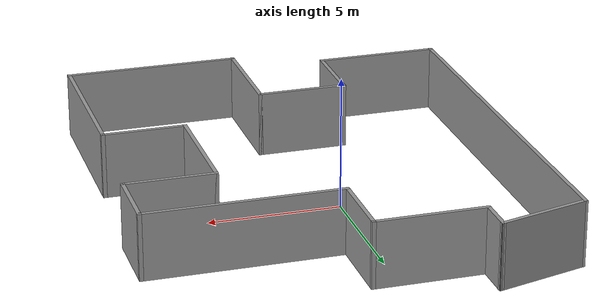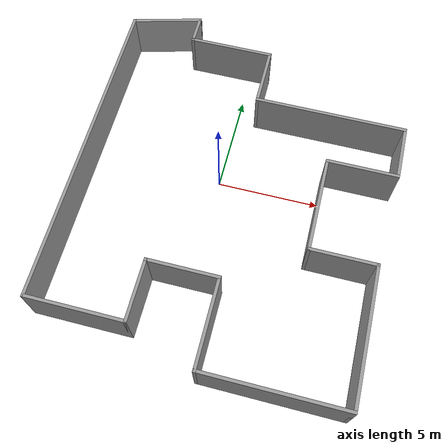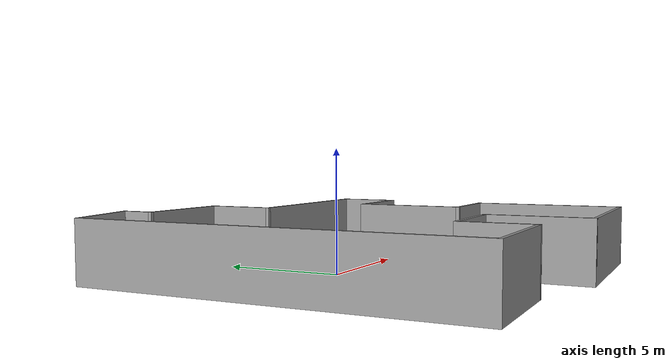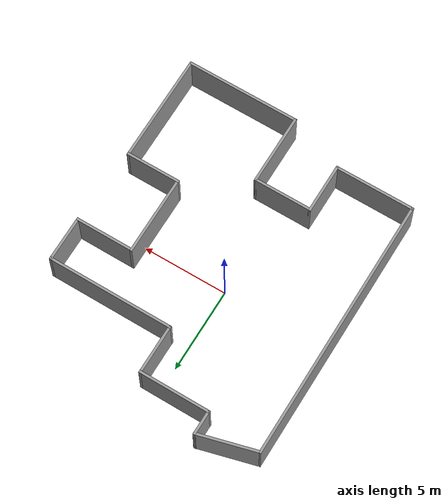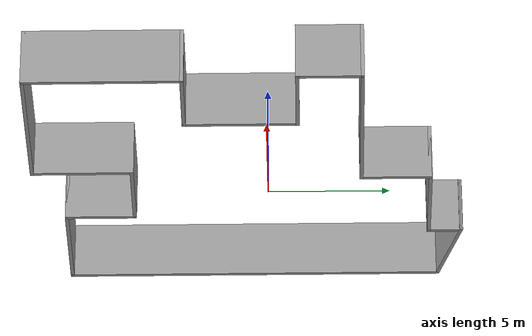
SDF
<?xml version='1.0'?>
<sdf version='1.7'>
  <model name='building'>
    <pose>0.923952 -0.822883 0 0 -0 0</pose>
    <link name='Wall_10'>
      <collision name='Wall_10_Collision'>
        <geometry>
          <box>
            <size>3 0.15 2.5</size>
          </box>
        </geometry>
        <pose>0 0 1.25 0 -0 0</pose>
      </collision>
      <visual name='Wall_10_Visual'>
        <pose>0 0 1.25 0 -0 0</pose>
        <geometry>
          <box>
            <size>3 0.15 2.5</size>
          </box>
        </geometry>
        <material>
          <script>
            <uri>file://media/materials/scripts/gazebo.material</uri>
            <name>Gazebo/Grey</name>
          </script>
          <ambient>1 1 1 1</ambient>
        </material>
        <meta>
          <layer>0</layer>
        </meta>
      </visual>
      <pose>-2.8 -6.20843 0 0 -0 1.5708</pose>
    </link>
    <link name='Wall_11'>
      <collision name='Wall_11_Collision'>
        <geometry>
          <box>
            <size>3.5 0.15 2.5</size>
          </box>
        </geometry>
        <pose>0 0 1.25 0 -0 0</pose>
      </collision>
      <visual name='Wall_11_Visual'>
        <pose>0 0 1.25 0 -0 0</pose>
        <geometry>
          <box>
            <size>3.5 0.15 2.5</size>
          </box>
        </geometry>
        <material>
          <script>
            <uri>file://media/materials/scripts/gazebo.material</uri>
            <name>Gazebo/Grey</name>
          </script>
          <ambient>1 1 1 1</ambient>
        </material>
        <meta>
          <layer>0</layer>
        </meta>
      </visual>
      <pose>-1.125 -4.78343 0 0 -0 0</pose>
    </link>
    <link name='Wall_12'>
      <collision name='Wall_12_Collision'>
        <geometry>
          <box>
            <size>4.25 0.15 2.5</size>
          </box>
        </geometry>
        <pose>0 0 1.25 0 -0 0</pose>
      </collision>
      <visual name='Wall_12_Visual'>
        <pose>0 0 1.25 0 -0 0</pose>
        <geometry>
          <box>
            <size>4.25 0.15 2.5</size>
          </box>
        </geometry>
        <material>
          <script>
            <uri>file://media/materials/scripts/gazebo.material</uri>
            <name>Gazebo/Grey</name>
          </script>
          <ambient>1 1 1 1</ambient>
        </material>
        <meta>
          <layer>0</layer>
        </meta>
      </visual>
      <pose>0.550001 -6.83343 0 0 -0 -1.5708</pose>
    </link>
    <link name='Wall_13'>
      <collision name='Wall_13_Collision'>
        <geometry>
          <box>
            <size>6.75 0.15 2.5</size>
          </box>
        </geometry>
        <pose>0 0 1.25 0 -0 0</pose>
      </collision>
      <visual name='Wall_13_Visual'>
        <pose>0 0 1.25 0 -0 0</pose>
        <geometry>
          <box>
            <size>6.75 0.15 2.5</size>
          </box>
        </geometry>
        <material>
          <script>
            <uri>file://media/materials/scripts/gazebo.material</uri>
            <name>Gazebo/Grey</name>
          </script>
          <ambient>1 1 1 1</ambient>
        </material>
        <meta>
          <layer>0</layer>
        </meta>
      </visual>
      <pose>3.85 -8.88343 0 0 -0 0</pose>
    </link>
    <link name='Wall_14'>
      <collision name='Wall_14_Collision'>
        <geometry>
          <box>
            <size>6.5 0.15 2.5</size>
          </box>
        </geometry>
        <pose>0 0 1.25 0 -0 0</pose>
      </collision>
      <visual name='Wall_14_Visual'>
        <pose>0 0 1.25 0 -0 0</pose>
        <geometry>
          <box>
            <size>6.5 0.15 2.5</size>
          </box>
        </geometry>
        <material>
          <script>
            <uri>file://media/materials/scripts/gazebo.material</uri>
            <name>Gazebo/Grey</name>
          </script>
          <ambient>1 1 1 1</ambient>
        </material>
        <meta>
          <layer>0</layer>
        </meta>
      </visual>
      <pose>7.15 -5.70843 0 0 -0 1.5708</pose>
    </link>
    <link name='Wall_15'>
      <collision name='Wall_15_Collision'>
        <geometry>
          <box>
            <size>3.25 0.15 2.5</size>
          </box>
        </geometry>
        <pose>0 0 1.25 0 -0 0</pose>
      </collision>
      <visual name='Wall_15_Visual'>
        <pose>0 0 1.25 0 -0 0</pose>
        <geometry>
          <box>
            <size>3.25 0.15 2.5</size>
          </box>
        </geometry>
        <material>
          <script>
            <uri>file://media/materials/scripts/gazebo.material</uri>
            <name>Gazebo/Grey</name>
          </script>
          <ambient>1 1 1 1</ambient>
        </material>
        <meta>
          <layer>0</layer>
        </meta>
      </visual>
      <pose>5.6 -2.53343 0 0 -0 3.14159</pose>
    </link>
    <link name='Wall_16'>
      <collision name='Wall_16_Collision'>
        <geometry>
          <box>
            <size>4.75 0.15 2.5</size>
          </box>
        </geometry>
        <pose>0 0 1.25 0 -0 0</pose>
      </collision>
      <visual name='Wall_16_Visual'>
        <pose>0 0 1.25 0 -0 0</pose>
        <geometry>
          <box>
            <size>4.75 0.15 2.5</size>
          </box>
        </geometry>
        <material>
          <script>
            <uri>file://media/materials/scripts/gazebo.material</uri>
            <name>Gazebo/Grey</name>
          </script>
          <ambient>1 1 1 1</ambient>
        </material>
        <meta>
          <layer>0</layer>
        </meta>
      </visual>
      <pose>4.05 -0.233428 0 0 -0 1.5708</pose>
    </link>
    <link name='Wall_17'>
      <collision name='Wall_17_Collision'>
        <geometry>
          <box>
            <size>3.5 0.15 2.5</size>
          </box>
        </geometry>
        <pose>0 0 1.25 0 -0 0</pose>
      </collision>
      <visual name='Wall_17_Visual'>
        <pose>0 0 1.25 0 -0 0</pose>
        <geometry>
          <box>
            <size>3.5 0.15 2.5</size>
          </box>
        </geometry>
        <material>
          <script>
            <uri>file://media/materials/scripts/gazebo.material</uri>
            <name>Gazebo/Grey</name>
          </script>
          <ambient>1 1 1 1</ambient>
        </material>
        <meta>
          <layer>0</layer>
        </meta>
      </visual>
      <pose>5.725 2.06657 0 0 -0 0</pose>
    </link>
    <link name='Wall_18'>
      <collision name='Wall_18_Collision'>
        <geometry>
          <box>
            <size>2.75 0.15 2.5</size>
          </box>
        </geometry>
        <pose>0 0 1.25 0 -0 0</pose>
      </collision>
      <visual name='Wall_18_Visual'>
        <pose>0 0 1.25 0 -0 0</pose>
        <geometry>
          <box>
            <size>2.75 0.15 2.5</size>
          </box>
        </geometry>
        <material>
          <script>
            <uri>file://media/materials/scripts/gazebo.material</uri>
            <name>Gazebo/Grey</name>
          </script>
          <ambient>1 1 1 1</ambient>
        </material>
        <meta>
          <layer>0</layer>
        </meta>
      </visual>
      <pose>7.4 3.36657 0 0 -0 1.5708</pose>
    </link>
    <link name='Wall_19'>
      <collision name='Wall_19_Collision'>
        <geometry>
          <box>
            <size>7.5 0.15 2.5</size>
          </box>
        </geometry>
        <pose>0 0 1.25 0 -0 0</pose>
      </collision>
      <visual name='Wall_19_Visual'>
        <pose>0 0 1.25 0 -0 0</pose>
        <geometry>
          <box>
            <size>7.5 0.15 2.5</size>
          </box>
        </geometry>
        <material>
          <script>
            <uri>file://media/materials/scripts/gazebo.material</uri>
            <name>Gazebo/Grey</name>
          </script>
          <ambient>1 1 1 1</ambient>
        </material>
        <meta>
          <layer>0</layer>
        </meta>
      </visual>
      <pose>3.725 4.66657 0 0 -0 3.14159</pose>
    </link>
    <link name='Wall_20'>
      <collision name='Wall_20_Collision'>
        <geometry>
          <box>
            <size>3 0.15 2.5</size>
          </box>
        </geometry>
        <pose>0 0 1.25 0 -0 0</pose>
      </collision>
      <visual name='Wall_20_Visual'>
        <pose>0 0 1.25 0 -0 0</pose>
        <geometry>
          <box>
            <size>3 0.15 2.5</size>
          </box>
        </geometry>
        <material>
          <script>
            <uri>file://media/materials/scripts/gazebo.material</uri>
            <name>Gazebo/Grey</name>
          </script>
          <ambient>1 1 1 1</ambient>
        </material>
        <meta>
          <layer>0</layer>
        </meta>
      </visual>
      <pose>0.050001 6.09157 0 0 -0 1.5708</pose>
    </link>
    <link name='Wall_21'>
      <collision name='Wall_21_Collision'>
        <geometry>
          <box>
            <size>4.25 0.15 2.5</size>
          </box>
        </geometry>
        <pose>0 0 1.25 0 -0 0</pose>
      </collision>
      <visual name='Wall_21_Visual'>
        <pose>0 0 1.25 0 -0 0</pose>
        <geometry>
          <box>
            <size>4.25 0.15 2.5</size>
          </box>
        </geometry>
        <material>
          <script>
            <uri>file://media/materials/scripts/gazebo.material</uri>
            <name>Gazebo/Grey</name>
          </script>
          <ambient>1 1 1 1</ambient>
        </material>
        <meta>
          <layer>0</layer>
        </meta>
      </visual>
      <pose>-2 7.51657 0 0 -0 3.14159</pose>
    </link>
    <link name='Wall_22'>
      <collision name='Wall_22_Collision'>
        <geometry>
          <box>
            <size>1.5 0.15 2.5</size>
          </box>
        </geometry>
        <pose>0 0 1.25 0 -0 0</pose>
      </collision>
      <visual name='Wall_22_Visual'>
        <pose>0 0 1.25 0 -0 0</pose>
        <geometry>
          <box>
            <size>1.5 0.15 2.5</size>
          </box>
        </geometry>
        <material>
          <script>
            <uri>file://media/materials/scripts/gazebo.material</uri>
            <name>Gazebo/Grey</name>
          </script>
          <ambient>1 1 1 1</ambient>
        </material>
        <meta>
          <layer>0</layer>
        </meta>
      </visual>
      <pose>-4.05 8.19157 0 0 -0 1.5708</pose>
    </link>
    <link name='Wall_23'>
      <collision name='Wall_23_Collision'>
        <geometry>
          <box>
            <size>3.5 0.15 2.5</size>
          </box>
        </geometry>
        <pose>0 0 1.25 0 -0 0</pose>
      </collision>
      <visual name='Wall_23_Visual'>
        <pose>0 0 1.25 0 -0 0</pose>
        <geometry>
          <box>
            <size>3.5 0.15 2.5</size>
          </box>
        </geometry>
        <material>
          <script>
            <uri>file://media/materials/scripts/gazebo.material</uri>
            <name>Gazebo/Grey</name>
          </script>
          <ambient>1 1 1 1</ambient>
        </material>
        <meta>
          <layer>0</layer>
        </meta>
      </visual>
      <pose>-5.66793 8.43305 0 0 -0 -2.87979</pose>
    </link>
    <link name='Wall_8'>
      <collision name='Wall_8_Collision'>
        <geometry>
          <box>
            <size>15.75 0.15 2.5</size>
          </box>
        </geometry>
        <pose>0 0 1.25 0 -0 0</pose>
      </collision>
      <visual name='Wall_8_Visual'>
        <pose>0 0 1.25 0 -0 0</pose>
        <geometry>
          <box>
            <size>15.75 0.15 2.5</size>
          </box>
        </geometry>
        <material>
          <script>
            <uri>file://media/materials/scripts/gazebo.material</uri>
            <name>Gazebo/Grey</name>
          </script>
          <ambient>1 1 1 1</ambient>
        </material>
        <meta>
          <layer>0</layer>
        </meta>
      </visual>
      <pose>-7.4 0.166572 0 0 -0 -1.5708</pose>
    </link>
    <link name='Wall_9'>
      <collision name='Wall_9_Collision'>
        <geometry>
          <box>
            <size>4.75 0.15 2.5</size>
          </box>
        </geometry>
        <pose>0 0 1.25 0 -0 0</pose>
      </collision>
      <visual name='Wall_9_Visual'>
        <pose>0 0 1.25 0 -0 0</pose>
        <geometry>
          <box>
            <size>4.75 0.15 2.5</size>
          </box>
        </geometry>
        <material>
          <script>
            <uri>file://media/materials/scripts/gazebo.material</uri>
            <name>Gazebo/Grey</name>
          </script>
          <ambient>1 1 1 1</ambient>
        </material>
        <meta>
          <layer>0</layer>
        </meta>
      </visual>
      <pose>-5.1 -7.63343 0 0 -0 0</pose>
    </link>
    <static>1</static>
  </model>
</sdf>
